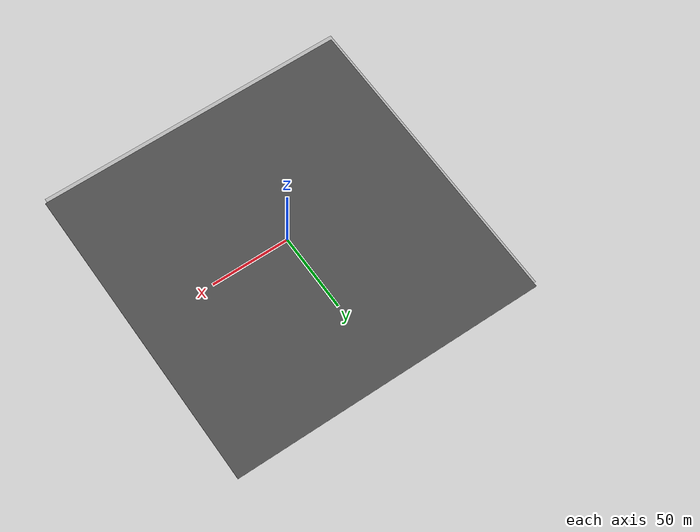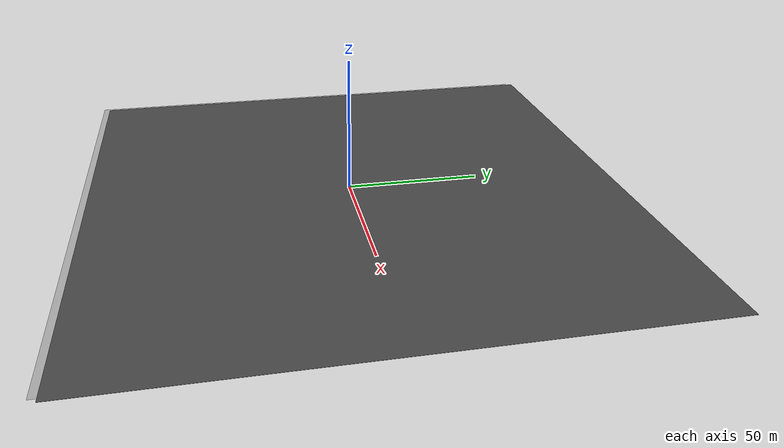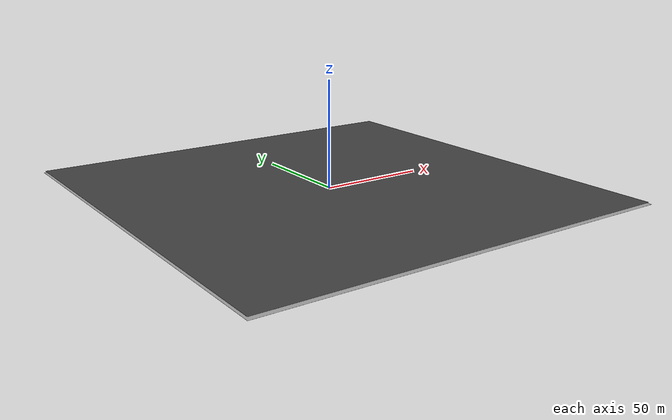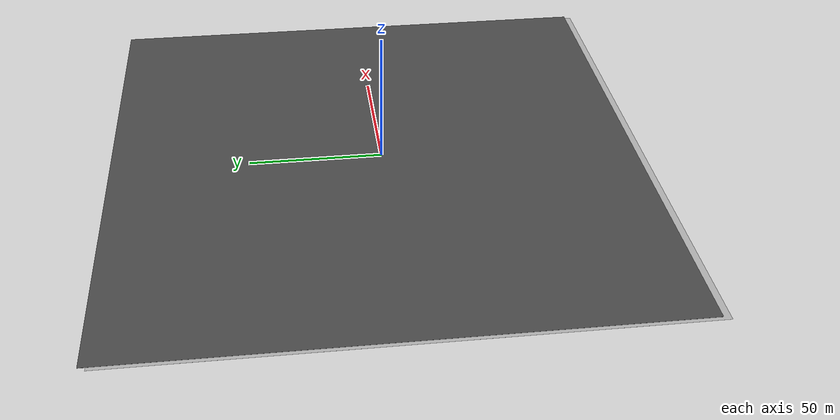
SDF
<sdf version="1.7">
 <world name="default">
  <model name="aruco_2_49">
   <static>1</static>
   <link name="aruco_2_49_link">
    <visual name="visual_marker_2_0">
     <pose>0 6 0 0 -0 1.5708</pose>
     <cast_shadows>0</cast_shadows>
     <geometry><box><size>0.44 0.44 0.001</size></box></geometry>
     <material>
      <script>
       <uri>model://aruco_kbt_map_txt/materials/scripts</uri>
       <uri>model://aruco_kbt_map_txt/materials/textures</uri>
       <name>aruco/marker_2_0</name>
      </script>
     </material>
    </visual>
    <visual name="visual_marker_2_1">
     <pose>1 6 0 0 -0 1.5708</pose>
     <cast_shadows>0</cast_shadows>
     <geometry><box><size>0.44 0.44 0.001</size></box></geometry>
     <material>
      <script>
       <uri>model://aruco_kbt_map_txt/materials/scripts</uri>
       <uri>model://aruco_kbt_map_txt/materials/textures</uri>
       <name>aruco/marker_2_1</name>
      </script>
     </material>
    </visual>
    <visual name="visual_marker_2_2">
     <pose>2 6 0 0 -0 1.5708</pose>
     <cast_shadows>0</cast_shadows>
     <geometry><box><size>0.44 0.44 0.001</size></box></geometry>
     <material>
      <script>
       <uri>model://aruco_kbt_map_txt/materials/scripts</uri>
       <uri>model://aruco_kbt_map_txt/materials/textures</uri>
       <name>aruco/marker_2_2</name>
      </script>
     </material>
    </visual>
    <visual name="visual_marker_2_3">
     <pose>3 6 0 0 -0 1.5708</pose>
     <cast_shadows>0</cast_shadows>
     <geometry><box><size>0.44 0.44 0.001</size></box></geometry>
     <material>
      <script>
       <uri>model://aruco_kbt_map_txt/materials/scripts</uri>
       <uri>model://aruco_kbt_map_txt/materials/textures</uri>
       <name>aruco/marker_2_3</name>
      </script>
     </material>
    </visual>
    <visual name="visual_marker_2_4">
     <pose>4 6 0 0 -0 1.5708</pose>
     <cast_shadows>0</cast_shadows>
     <geometry><box><size>0.44 0.44 0.001</size></box></geometry>
     <material>
      <script>
       <uri>model://aruco_kbt_map_txt/materials/scripts</uri>
       <uri>model://aruco_kbt_map_txt/materials/textures</uri>
       <name>aruco/marker_2_4</name>
      </script>
     </material>
    </visual>
    <visual name="visual_marker_2_5">
     <pose>5 6 0 0 -0 1.5708</pose>
     <cast_shadows>0</cast_shadows>
     <geometry><box><size>0.44 0.44 0.001</size></box></geometry>
     <material>
      <script>
       <uri>model://aruco_kbt_map_txt/materials/scripts</uri>
       <uri>model://aruco_kbt_map_txt/materials/textures</uri>
       <name>aruco/marker_2_5</name>
      </script>
     </material>
    </visual>
    <visual name="visual_marker_2_6">
     <pose>6 6 0 0 -0 1.5708</pose>
     <cast_shadows>0</cast_shadows>
     <geometry><box><size>0.44 0.44 0.001</size></box></geometry>
     <material>
      <script>
       <uri>model://aruco_kbt_map_txt/materials/scripts</uri>
       <uri>model://aruco_kbt_map_txt/materials/textures</uri>
       <name>aruco/marker_2_6</name>
      </script>
     </material>
    </visual>
    <visual name="visual_marker_2_7">
     <pose>0 5 0 0 -0 1.5708</pose>
     <cast_shadows>0</cast_shadows>
     <geometry><box><size>0.44 0.44 0.001</size></box></geometry>
     <material>
      <script>
       <uri>model://aruco_kbt_map_txt/materials/scripts</uri>
       <uri>model://aruco_kbt_map_txt/materials/textures</uri>
       <name>aruco/marker_2_7</name>
      </script>
     </material>
    </visual>
    <visual name="visual_marker_2_8">
     <pose>1 5 0 0 -0 1.5708</pose>
     <cast_shadows>0</cast_shadows>
     <geometry><box><size>0.44 0.44 0.001</size></box></geometry>
     <material>
      <script>
       <uri>model://aruco_kbt_map_txt/materials/scripts</uri>
       <uri>model://aruco_kbt_map_txt/materials/textures</uri>
       <name>aruco/marker_2_8</name>
      </script>
     </material>
    </visual>
    <visual name="visual_marker_2_9">
     <pose>2 5 0 0 -0 1.5708</pose>
     <cast_shadows>0</cast_shadows>
     <geometry><box><size>0.44 0.44 0.001</size></box></geometry>
     <material>
      <script>
       <uri>model://aruco_kbt_map_txt/materials/scripts</uri>
       <uri>model://aruco_kbt_map_txt/materials/textures</uri>
       <name>aruco/marker_2_9</name>
      </script>
     </material>
    </visual>
    <visual name="visual_marker_2_10">
     <pose>3 5 0 0 -0 1.5708</pose>
     <cast_shadows>0</cast_shadows>
     <geometry><box><size>0.44 0.44 0.001</size></box></geometry>
     <material>
      <script>
       <uri>model://aruco_kbt_map_txt/materials/scripts</uri>
       <uri>model://aruco_kbt_map_txt/materials/textures</uri>
       <name>aruco/marker_2_10</name>
      </script>
     </material>
    </visual>
    <visual name="visual_marker_2_11">
     <pose>4 5 0 0 -0 1.5708</pose>
     <cast_shadows>0</cast_shadows>
     <geometry><box><size>0.44 0.44 0.001</size></box></geometry>
     <material>
      <script>
       <uri>model://aruco_kbt_map_txt/materials/scripts</uri>
       <uri>model://aruco_kbt_map_txt/materials/textures</uri>
       <name>aruco/marker_2_11</name>
      </script>
     </material>
    </visual>
    <visual name="visual_marker_2_12">
     <pose>5 5 0 0 -0 1.5708</pose>
     <cast_shadows>0</cast_shadows>
     <geometry><box><size>0.44 0.44 0.001</size></box></geometry>
     <material>
      <script>
       <uri>model://aruco_kbt_map_txt/materials/scripts</uri>
       <uri>model://aruco_kbt_map_txt/materials/textures</uri>
       <name>aruco/marker_2_12</name>
      </script>
     </material>
    </visual>
    <visual name="visual_marker_2_13">
     <pose>6 5 0 0 -0 1.5708</pose>
     <cast_shadows>0</cast_shadows>
     <geometry><box><size>0.44 0.44 0.001</size></box></geometry>
     <material>
      <script>
       <uri>model://aruco_kbt_map_txt/materials/scripts</uri>
       <uri>model://aruco_kbt_map_txt/materials/textures</uri>
       <name>aruco/marker_2_13</name>
      </script>
     </material>
    </visual>
    <visual name="visual_marker_2_14">
     <pose>0 4 0 0 -0 1.5708</pose>
     <cast_shadows>0</cast_shadows>
     <geometry><box><size>0.44 0.44 0.001</size></box></geometry>
     <material>
      <script>
       <uri>model://aruco_kbt_map_txt/materials/scripts</uri>
       <uri>model://aruco_kbt_map_txt/materials/textures</uri>
       <name>aruco/marker_2_14</name>
      </script>
     </material>
    </visual>
    <visual name="visual_marker_2_15">
     <pose>1 4 0 0 -0 1.5708</pose>
     <cast_shadows>0</cast_shadows>
     <geometry><box><size>0.44 0.44 0.001</size></box></geometry>
     <material>
      <script>
       <uri>model://aruco_kbt_map_txt/materials/scripts</uri>
       <uri>model://aruco_kbt_map_txt/materials/textures</uri>
       <name>aruco/marker_2_15</name>
      </script>
     </material>
    </visual>
    <visual name="visual_marker_2_16">
     <pose>2 4 0 0 -0 1.5708</pose>
     <cast_shadows>0</cast_shadows>
     <geometry><box><size>0.44 0.44 0.001</size></box></geometry>
     <material>
      <script>
       <uri>model://aruco_kbt_map_txt/materials/scripts</uri>
       <uri>model://aruco_kbt_map_txt/materials/textures</uri>
       <name>aruco/marker_2_16</name>
      </script>
     </material>
    </visual>
    <visual name="visual_marker_2_17">
     <pose>3 4 0 0 -0 1.5708</pose>
     <cast_shadows>0</cast_shadows>
     <geometry><box><size>0.44 0.44 0.001</size></box></geometry>
     <material>
      <script>
       <uri>model://aruco_kbt_map_txt/materials/scripts</uri>
       <uri>model://aruco_kbt_map_txt/materials/textures</uri>
       <name>aruco/marker_2_17</name>
      </script>
     </material>
    </visual>
    <visual name="visual_marker_2_18">
     <pose>4 4 0 0 -0 1.5708</pose>
     <cast_shadows>0</cast_shadows>
     <geometry><box><size>0.44 0.44 0.001</size></box></geometry>
     <material>
      <script>
       <uri>model://aruco_kbt_map_txt/materials/scripts</uri>
       <uri>model://aruco_kbt_map_txt/materials/textures</uri>
       <name>aruco/marker_2_18</name>
      </script>
     </material>
    </visual>
    <visual name="visual_marker_2_19">
     <pose>5 4 0 0 -0 1.5708</pose>
     <cast_shadows>0</cast_shadows>
     <geometry><box><size>0.44 0.44 0.001</size></box></geometry>
     <material>
      <script>
       <uri>model://aruco_kbt_map_txt/materials/scripts</uri>
       <uri>model://aruco_kbt_map_txt/materials/textures</uri>
       <name>aruco/marker_2_19</name>
      </script>
     </material>
    </visual>
    <visual name="visual_marker_2_20">
     <pose>6 4 0 0 -0 1.5708</pose>
     <cast_shadows>0</cast_shadows>
     <geometry><box><size>0.44 0.44 0.001</size></box></geometry>
     <material>
      <script>
       <uri>model://aruco_kbt_map_txt/materials/scripts</uri>
       <uri>model://aruco_kbt_map_txt/materials/textures</uri>
       <name>aruco/marker_2_20</name>
      </script>
     </material>
    </visual>
    <visual name="visual_marker_2_21">
     <pose>0 3 0 0 -0 1.5708</pose>
     <cast_shadows>0</cast_shadows>
     <geometry><box><size>0.44 0.44 0.001</size></box></geometry>
     <material>
      <script>
       <uri>model://aruco_kbt_map_txt/materials/scripts</uri>
       <uri>model://aruco_kbt_map_txt/materials/textures</uri>
       <name>aruco/marker_2_21</name>
      </script>
     </material>
    </visual>
    <visual name="visual_marker_2_22">
     <pose>1 3 0 0 -0 1.5708</pose>
     <cast_shadows>0</cast_shadows>
     <geometry><box><size>0.44 0.44 0.001</size></box></geometry>
     <material>
      <script>
       <uri>model://aruco_kbt_map_txt/materials/scripts</uri>
       <uri>model://aruco_kbt_map_txt/materials/textures</uri>
       <name>aruco/marker_2_22</name>
      </script>
     </material>
    </visual>
    <visual name="visual_marker_2_23">
     <pose>2 3 0 0 -0 1.5708</pose>
     <cast_shadows>0</cast_shadows>
     <geometry><box><size>0.44 0.44 0.001</size></box></geometry>
     <material>
      <script>
       <uri>model://aruco_kbt_map_txt/materials/scripts</uri>
       <uri>model://aruco_kbt_map_txt/materials/textures</uri>
       <name>aruco/marker_2_23</name>
      </script>
     </material>
    </visual>
    <visual name="visual_marker_2_24">
     <pose>3 3 0 0 -0 1.5708</pose>
     <cast_shadows>0</cast_shadows>
     <geometry><box><size>0.44 0.44 0.001</size></box></geometry>
     <material>
      <script>
       <uri>model://aruco_kbt_map_txt/materials/scripts</uri>
       <uri>model://aruco_kbt_map_txt/materials/textures</uri>
       <name>aruco/marker_2_24</name>
      </script>
     </material>
    </visual>
    <visual name="visual_marker_2_25">
     <pose>4 3 0 0 -0 1.5708</pose>
     <cast_shadows>0</cast_shadows>
     <geometry><box><size>0.44 0.44 0.001</size></box></geometry>
     <material>
      <script>
       <uri>model://aruco_kbt_map_txt/materials/scripts</uri>
       <uri>model://aruco_kbt_map_txt/materials/textures</uri>
       <name>aruco/marker_2_25</name>
      </script>
     </material>
    </visual>
    <visual name="visual_marker_2_26">
     <pose>5 3 0 0 -0 1.5708</pose>
     <cast_shadows>0</cast_shadows>
     <geometry><box><size>0.44 0.44 0.001</size></box></geometry>
     <material>
      <script>
       <uri>model://aruco_kbt_map_txt/materials/scripts</uri>
       <uri>model://aruco_kbt_map_txt/materials/textures</uri>
       <name>aruco/marker_2_26</name>
      </script>
     </material>
    </visual>
    <visual name="visual_marker_2_27">
     <pose>6 3 0 0 -0 1.5708</pose>
     <cast_shadows>0</cast_shadows>
     <geometry><box><size>0.44 0.44 0.001</size></box></geometry>
     <material>
      <script>
       <uri>model://aruco_kbt_map_txt/materials/scripts</uri>
       <uri>model://aruco_kbt_map_txt/materials/textures</uri>
       <name>aruco/marker_2_27</name>
      </script>
     </material>
    </visual>
    <visual name="visual_marker_2_28">
     <pose>0 2 0 0 -0 1.5708</pose>
     <cast_shadows>0</cast_shadows>
     <geometry><box><size>0.44 0.44 0.001</size></box></geometry>
     <material>
      <script>
       <uri>model://aruco_kbt_map_txt/materials/scripts</uri>
       <uri>model://aruco_kbt_map_txt/materials/textures</uri>
       <name>aruco/marker_2_28</name>
      </script>
     </material>
    </visual>
    <visual name="visual_marker_2_29">
     <pose>1 2 0 0 -0 1.5708</pose>
     <cast_shadows>0</cast_shadows>
     <geometry><box><size>0.44 0.44 0.001</size></box></geometry>
     <material>
      <script>
       <uri>model://aruco_kbt_map_txt/materials/scripts</uri>
       <uri>model://aruco_kbt_map_txt/materials/textures</uri>
       <name>aruco/marker_2_29</name>
      </script>
     </material>
    </visual>
    <visual name="visual_marker_2_30">
     <pose>2 2 0 0 -0 1.5708</pose>
     <cast_shadows>0</cast_shadows>
     <geometry><box><size>0.44 0.44 0.001</size></box></geometry>
     <material>
      <script>
       <uri>model://aruco_kbt_map_txt/materials/scripts</uri>
       <uri>model://aruco_kbt_map_txt/materials/textures</uri>
       <name>aruco/marker_2_30</name>
      </script>
     </material>
    </visual>
    <visual name="visual_marker_2_31">
     <pose>3 2 0 0 -0 1.5708</pose>
     <cast_shadows>0</cast_shadows>
     <geometry><box><size>0.44 0.44 0.001</size></box></geometry>
     <material>
      <script>
       <uri>model://aruco_kbt_map_txt/materials/scripts</uri>
       <uri>model://aruco_kbt_map_txt/materials/textures</uri>
       <name>aruco/marker_2_31</name>
      </script>
     </material>
    </visual>
    <visual name="visual_marker_2_32">
     <pose>4 2 0 0 -0 1.5708</pose>
     <cast_shadows>0</cast_shadows>
     <geometry><box><size>0.44 0.44 0.001</size></box></geometry>
     <material>
      <script>
       <uri>model://aruco_kbt_map_txt/materials/scripts</uri>
       <uri>model://aruco_kbt_map_txt/materials/textures</uri>
       <name>aruco/marker_2_32</name>
      </script>
     </material>
    </visual>
    <visual name="visual_marker_2_33">
     <pose>5 2 0 0 -0 1.5708</pose>
     <cast_shadows>0</cast_shadows>
     <geometry><box><size>0.44 0.44 0.001</size></box></geometry>
     <material>
      <script>
       <uri>model://aruco_kbt_map_txt/materials/scripts</uri>
       <uri>model://aruco_kbt_map_txt/materials/textures</uri>
       <name>aruco/marker_2_33</name>
      </script>
     </material>
    </visual>
    <visual name="visual_marker_2_34">
     <pose>6 2 0 0 -0 1.5708</pose>
     <cast_shadows>0</cast_shadows>
     <geometry><box><size>0.44 0.44 0.001</size></box></geometry>
     <material>
      <script>
       <uri>model://aruco_kbt_map_txt/materials/scripts</uri>
       <uri>model://aruco_kbt_map_txt/materials/textures</uri>
       <name>aruco/marker_2_34</name>
      </script>
     </material>
    </visual>
    <visual name="visual_marker_2_35">
     <pose>0 1 0 0 -0 1.5708</pose>
     <cast_shadows>0</cast_shadows>
     <geometry><box><size>0.44 0.44 0.001</size></box></geometry>
     <material>
      <script>
       <uri>model://aruco_kbt_map_txt/materials/scripts</uri>
       <uri>model://aruco_kbt_map_txt/materials/textures</uri>
       <name>aruco/marker_2_35</name>
      </script>
     </material>
    </visual>
    <visual name="visual_marker_2_36">
     <pose>1 1 0 0 -0 1.5708</pose>
     <cast_shadows>0</cast_shadows>
     <geometry><box><size>0.44 0.44 0.001</size></box></geometry>
     <material>
      <script>
       <uri>model://aruco_kbt_map_txt/materials/scripts</uri>
       <uri>model://aruco_kbt_map_txt/materials/textures</uri>
       <name>aruco/marker_2_36</name>
      </script>
     </material>
    </visual>
    <visual name="visual_marker_2_37">
     <pose>2 1 0 0 -0 1.5708</pose>
     <cast_shadows>0</cast_shadows>
     <geometry><box><size>0.44 0.44 0.001</size></box></geometry>
     <material>
      <script>
       <uri>model://aruco_kbt_map_txt/materials/scripts</uri>
       <uri>model://aruco_kbt_map_txt/materials/textures</uri>
       <name>aruco/marker_2_37</name>
      </script>
     </material>
    </visual>
    <visual name="visual_marker_2_38">
     <pose>3 1 0 0 -0 1.5708</pose>
     <cast_shadows>0</cast_shadows>
     <geometry><box><size>0.44 0.44 0.001</size></box></geometry>
     <material>
      <script>
       <uri>model://aruco_kbt_map_txt/materials/scripts</uri>
       <uri>model://aruco_kbt_map_txt/materials/textures</uri>
       <name>aruco/marker_2_38</name>
      </script>
     </material>
    </visual>
    <visual name="visual_marker_2_39">
     <pose>4 1 0 0 -0 1.5708</pose>
     <cast_shadows>0</cast_shadows>
     <geometry><box><size>0.44 0.44 0.001</size></box></geometry>
     <material>
      <script>
       <uri>model://aruco_kbt_map_txt/materials/scripts</uri>
       <uri>model://aruco_kbt_map_txt/materials/textures</uri>
       <name>aruco/marker_2_39</name>
      </script>
     </material>
    </visual>
    <visual name="visual_marker_2_40">
     <pose>5 1 0 0 -0 1.5708</pose>
     <cast_shadows>0</cast_shadows>
     <geometry><box><size>0.44 0.44 0.001</size></box></geometry>
     <material>
      <script>
       <uri>model://aruco_kbt_map_txt/materials/scripts</uri>
       <uri>model://aruco_kbt_map_txt/materials/textures</uri>
       <name>aruco/marker_2_40</name>
      </script>
     </material>
    </visual>
    <visual name="visual_marker_2_41">
     <pose>6 1 0 0 -0 1.5708</pose>
     <cast_shadows>0</cast_shadows>
     <geometry><box><size>0.44 0.44 0.001</size></box></geometry>
     <material>
      <script>
       <uri>model://aruco_kbt_map_txt/materials/scripts</uri>
       <uri>model://aruco_kbt_map_txt/materials/textures</uri>
       <name>aruco/marker_2_41</name>
      </script>
     </material>
    </visual>
    <visual name="visual_marker_2_42">
     <pose>0 0 0 0 -0 1.5708</pose>
     <cast_shadows>0</cast_shadows>
     <geometry><box><size>0.44 0.44 0.001</size></box></geometry>
     <material>
      <script>
       <uri>model://aruco_kbt_map_txt/materials/scripts</uri>
       <uri>model://aruco_kbt_map_txt/materials/textures</uri>
       <name>aruco/marker_2_42</name>
      </script>
     </material>
    </visual>
    <visual name="visual_marker_2_43">
     <pose>1 0 0 0 -0 1.5708</pose>
     <cast_shadows>0</cast_shadows>
     <geometry><box><size>0.44 0.44 0.001</size></box></geometry>
     <material>
      <script>
       <uri>model://aruco_kbt_map_txt/materials/scripts</uri>
       <uri>model://aruco_kbt_map_txt/materials/textures</uri>
       <name>aruco/marker_2_43</name>
      </script>
     </material>
    </visual>
    <visual name="visual_marker_2_44">
     <pose>2 0 0 0 -0 1.5708</pose>
     <cast_shadows>0</cast_shadows>
     <geometry><box><size>0.44 0.44 0.001</size></box></geometry>
     <material>
      <script>
       <uri>model://aruco_kbt_map_txt/materials/scripts</uri>
       <uri>model://aruco_kbt_map_txt/materials/textures</uri>
       <name>aruco/marker_2_44</name>
      </script>
     </material>
    </visual>
    <visual name="visual_marker_2_45">
     <pose>3 0 0 0 -0 1.5708</pose>
     <cast_shadows>0</cast_shadows>
     <geometry><box><size>0.44 0.44 0.001</size></box></geometry>
     <material>
      <script>
       <uri>model://aruco_kbt_map_txt/materials/scripts</uri>
       <uri>model://aruco_kbt_map_txt/materials/textures</uri>
       <name>aruco/marker_2_45</name>
      </script>
     </material>
    </visual>
    <visual name="visual_marker_2_46">
     <pose>4 0 0 0 -0 1.5708</pose>
     <cast_shadows>0</cast_shadows>
     <geometry><box><size>0.44 0.44 0.001</size></box></geometry>
     <material>
      <script>
       <uri>model://aruco_kbt_map_txt/materials/scripts</uri>
       <uri>model://aruco_kbt_map_txt/materials/textures</uri>
       <name>aruco/marker_2_46</name>
      </script>
     </material>
    </visual>
    <visual name="visual_marker_2_47">
     <pose>5 0 0 0 -0 1.5708</pose>
     <cast_shadows>0</cast_shadows>
     <geometry><box><size>0.44 0.44 0.001</size></box></geometry>
     <material>
      <script>
       <uri>model://aruco_kbt_map_txt/materials/scripts</uri>
       <uri>model://aruco_kbt_map_txt/materials/textures</uri>
       <name>aruco/marker_2_47</name>
      </script>
     </material>
    </visual>
    <visual name="visual_marker_2_48">
     <pose>6 0 0 0 -0 1.5708</pose>
     <cast_shadows>0</cast_shadows>
     <geometry><box><size>0.44 0.44 0.001</size></box></geometry>
     <material>
      <script>
       <uri>model://aruco_kbt_map_txt/materials/scripts</uri>
       <uri>model://aruco_kbt_map_txt/materials/textures</uri>
       <name>aruco/marker_2_48</name>
      </script>
     </material>
    </visual>
   </link>
  </model>
  <light name="sun" type="directional">
   <pose>0 0 10 0 -0 0</pose>
   <diffuse>0.8 0.8 0.8 1</diffuse>
   <specular>0.2 0.2 0.2 1</specular>
   <attenuation>
    <range>1000</range>
    <constant>0.9</constant>
    <linear>0.01</linear>
    <quadratic>0.001</quadratic>
   </attenuation>
   <direction>-0.5 0.1 -0.9</direction>
   <spot><inner_angle>0</inner_angle><outer_angle>0</outer_angle><falloff>0</falloff></spot>
  </light>
  <model name="parquet_plane">
   <static>1</static>
   <link name="link">
    <collision name="collision"><geometry><box><size>200 200 0.02</size></box></geometry></collision>
    <visual name="visual">
     <cast_shadows>0</cast_shadows>
     <geometry><box><size>200 200 0.02</size></box></geometry>
     <material>
      <script>
       <uri>model://parquet_plane/materials/scripts</uri>
       <uri>model://parquet_plane/materials/textures</uri>
       <name>parquet</name>
      </script>
     </material>
    </visual>
   </link>
   <pose>0 0 -0.01 0 -0 0</pose>
  </model>
  <scene>
   <ambient>0.8 0.8 0.8 1</ambient>
   <background>0.8 0.9 1 1</background>
   <shadows>0</shadows>
   <grid>0</grid>
   <origin_visual>0</origin_visual>
  </scene>
  <physics name="default_physics" default="0" type="ode">
   <ode>
    <solver>
     <type>quick</type>
     <iters>10</iters>
     <sor>1.3</sor>
     <use_dynamic_moi_rescaling>0</use_dynamic_moi_rescaling>
    </solver>
    <constraints>
     <cfm>0</cfm>
     <erp>0.2</erp>
     <contact_max_correcting_vel>100</contact_max_correcting_vel>
     <contact_surface_layer>0.001</contact_surface_layer>
    </constraints>
   </ode>
   <max_step_size>0.004</max_step_size>
   <real_time_factor>1</real_time_factor>
   <real_time_update_rate>250</real_time_update_rate>
  </physics>
  <gravity>0 0 -9.8066</gravity>
  <magnetic_field>6e-06 2.3e-05 -4.2e-05</magnetic_field>
  <atmosphere type="adiabatic"/>
  <spherical_coordinates>
   <surface_model>EARTH_WGS84</surface_model>
   <latitude_deg>0</latitude_deg>
   <longitude_deg>0</longitude_deg>
   <elevation>0</elevation>
   <heading_deg>0</heading_deg>
  </spherical_coordinates>
  <model name="asphalt_plane">
   <static>1</static>
   <link name="link">
    <collision name="collision"><geometry><box><size>200 200 0.1</size></box></geometry></collision>
    <visual name="visual">
     <cast_shadows>0</cast_shadows>
     <geometry><box><size>200 200 0.1</size></box></geometry>
     <material>
      <script>
       <uri>model://asphalt_plane/materials/scripts</uri>
       <uri>model://asphalt_plane/materials/textures</uri>
       <name>vrc/asphalt</name>
      </script>
     </material>
    </visual>
   </link>
   <pose>1.33109 2.4867 0 0 -0 0</pose>
  </model>
 </world>
</sdf>
